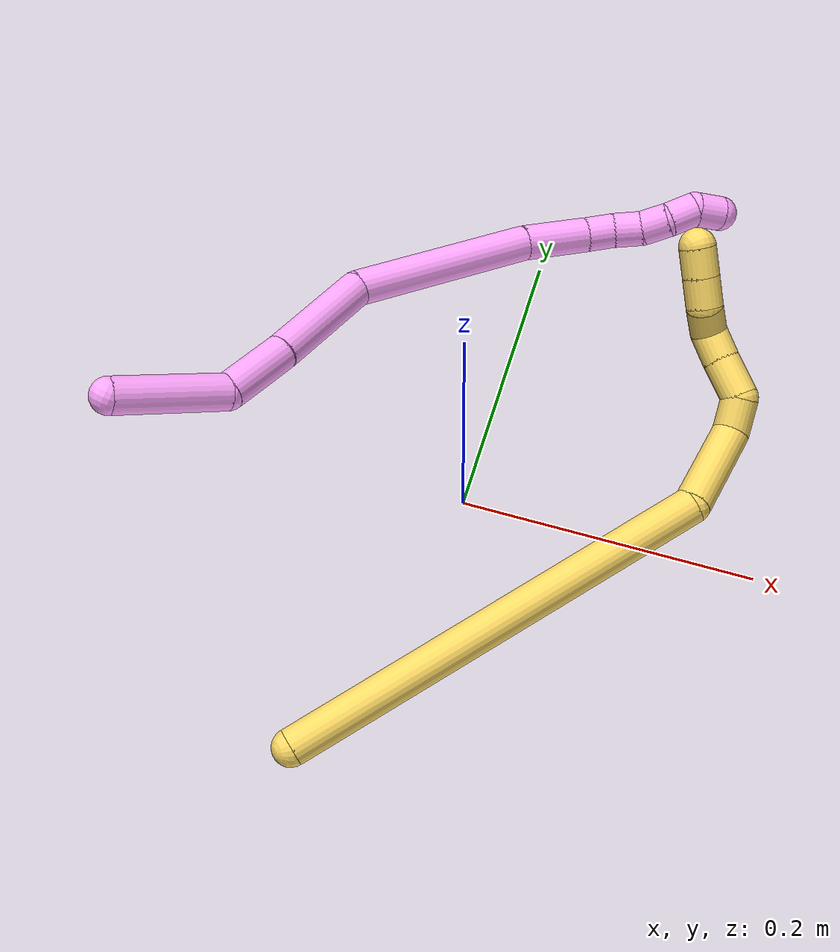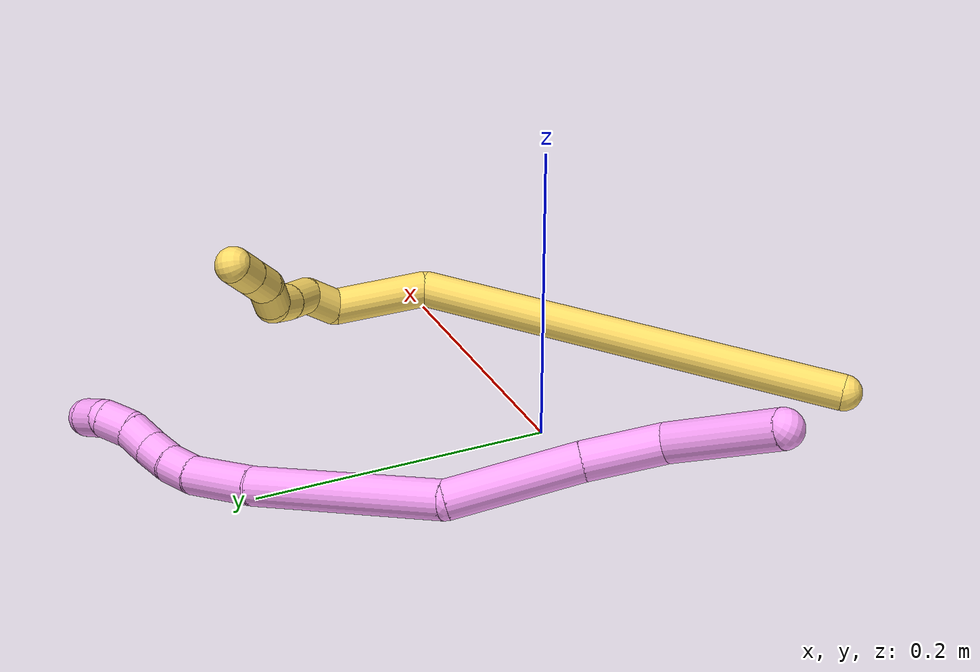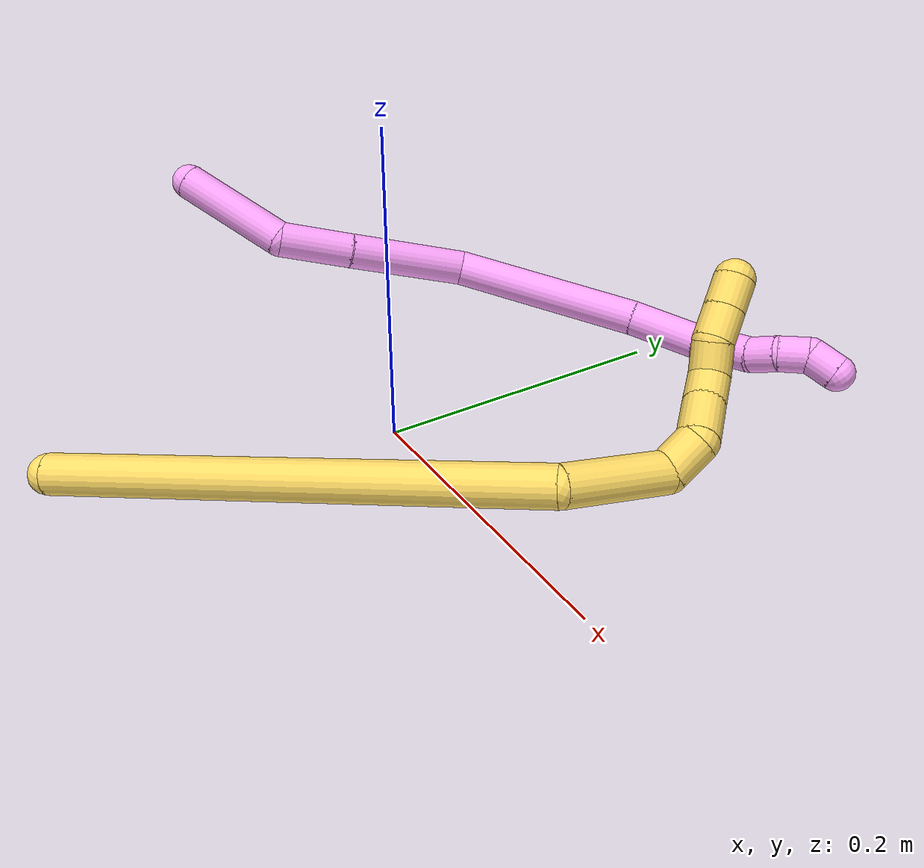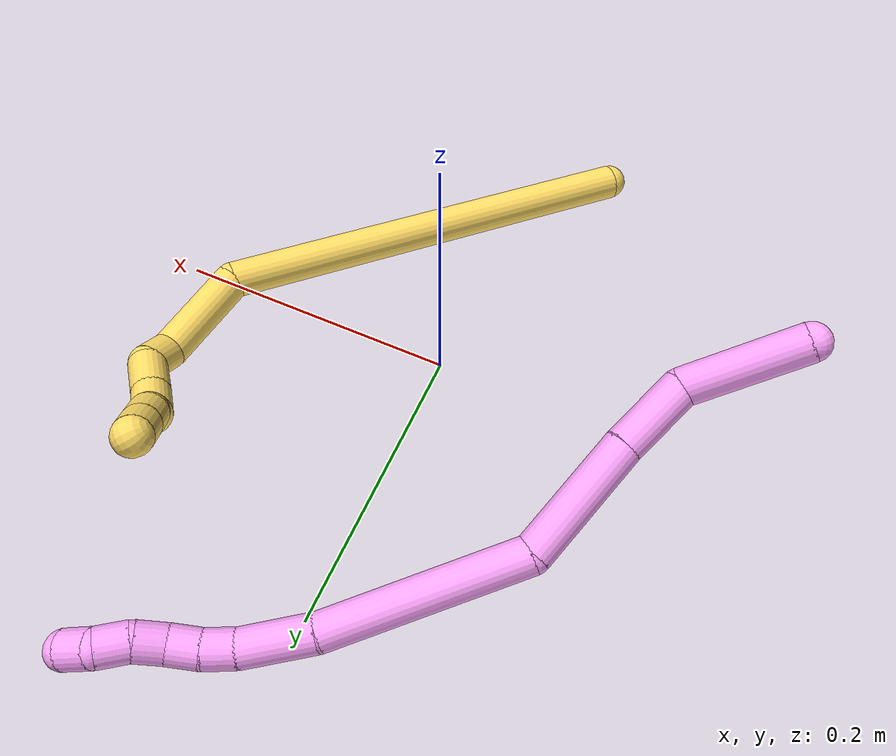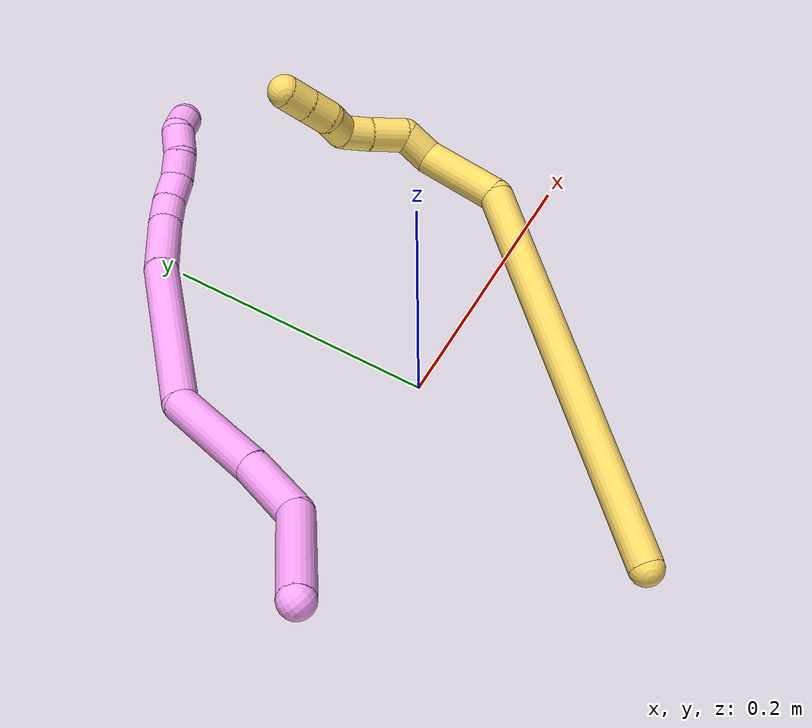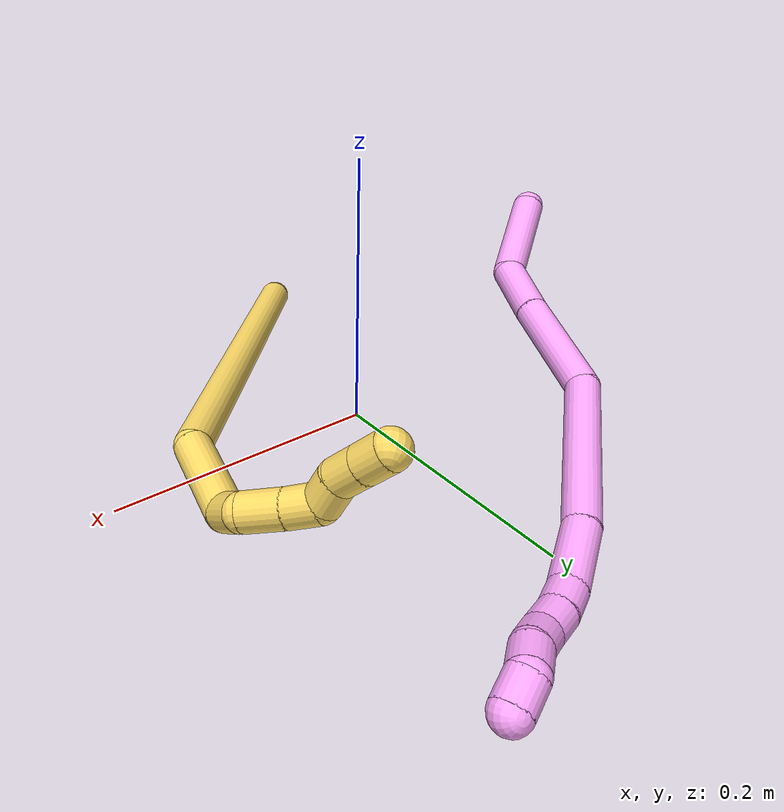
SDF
<sdf version="1.7">
 <world name="default">
  <model name="4">
   <static>0</static>
   <link name="4">
    <collision name="collision-cylinder-e_1_1_4">
     <pose>0.023434 0.029203 0.013548 -1.13641 0.629236 -0.409703</pose>
     <geometry><cylinder><radius>0.0125</radius><length>0.079637</length></cylinder></geometry>
     <surface>
      <friction><ode><mu>1.16</mu><mu2>1.16</mu2><slip1>0</slip1><slip2>0</slip2></ode></friction>
      <contact><ode><kp>1e+06</kp><kd>1</kd><max_vel>0</max_vel><min_depth>0.001</min_depth></ode></contact>
     </surface>
    </collision>
    <visual name="visual-cylinder-e_1_1_4">
     <pose>0.023434 0.029203 0.013548 -1.13641 0.629236 -0.409703</pose>
     <geometry><cylinder><radius>0.0125</radius><length>0.079637</length></cylinder></geometry>
     <material><ambient>1 0.65098 0.996078 1</ambient></material>
    </visual>
    <collision name="collision-cylinder-e_2_4_5">
     <pose>0.050347 0.077047 0.04411 -0.83102 0.136964 -0.060505</pose>
     <geometry><cylinder><radius>0.0125</radius><length>0.050954</length></cylinder></geometry>
     <surface>
      <friction><ode><mu>1.16</mu><mu2>1.16</mu2><slip1>0</slip1><slip2>0</slip2></ode></friction>
      <contact><ode><kp>1e+06</kp><kd>1</kd><max_vel>0</max_vel><min_depth>0.001</min_depth></ode></contact>
     </surface>
    </collision>
    <visual name="visual-cylinder-e_2_4_5">
     <pose>0.050347 0.077047 0.04411 -0.83102 0.136964 -0.060505</pose>
     <geometry><cylinder><radius>0.0125</radius><length>0.050954</length></cylinder></geometry>
     <material><ambient>1 0.65098 0.996078 1</ambient></material>
    </visual>
    <collision name="collision-cylinder-e_3_5_6">
     <pose>0.056451 0.127322 0.089035 -0.847833 0.06215 -0.028054</pose>
     <geometry><cylinder><radius>0.0125</radius><length>0.084535</length></cylinder></geometry>
     <surface>
      <friction><ode><mu>1.16</mu><mu2>1.16</mu2><slip1>0</slip1><slip2>0</slip2></ode></friction>
      <contact><ode><kp>1e+06</kp><kd>1</kd><max_vel>0</max_vel><min_depth>0.001</min_depth></ode></contact>
     </surface>
    </collision>
    <visual name="visual-cylinder-e_3_5_6">
     <pose>0.056451 0.127322 0.089035 -0.847833 0.06215 -0.028054</pose>
     <geometry><cylinder><radius>0.0125</radius><length>0.084535</length></cylinder></geometry>
     <material><ambient>1 0.65098 0.996078 1</ambient></material>
    </visual>
    <collision name="collision-cylinder-e_4_6_7">
     <pose>0.095006 0.199822 0.155246 -0.817802 0.570375 -0.25273</pose>
     <geometry><cylinder><radius>0.0125</radius><length>0.133085</length></cylinder></geometry>
     <surface>
      <friction><ode><mu>1.16</mu><mu2>1.16</mu2><slip1>0</slip1><slip2>0</slip2></ode></friction>
      <contact><ode><kp>1e+06</kp><kd>1</kd><max_vel>0</max_vel><min_depth>0.001</min_depth></ode></contact>
     </surface>
    </collision>
    <visual name="visual-cylinder-e_4_6_7">
     <pose>0.095006 0.199822 0.155246 -0.817802 0.570375 -0.25273</pose>
     <geometry><cylinder><radius>0.0125</radius><length>0.133085</length></cylinder></geometry>
     <material><ambient>1 0.65098 0.996078 1</ambient></material>
    </visual>
    <collision name="collision-cylinder-e_5_7_8">
     <pose>0.146979 0.254251 0.205555 -0.846114 0.724839 -0.338176</pose>
     <geometry><cylinder><radius>0.0125</radius><length>0.048396</length></cylinder></geometry>
     <surface>
      <friction><ode><mu>1.16</mu><mu2>1.16</mu2><slip1>0</slip1><slip2>0</slip2></ode></friction>
      <contact><ode><kp>1e+06</kp><kd>1</kd><max_vel>0</max_vel><min_depth>0.001</min_depth></ode></contact>
     </surface>
    </collision>
    <visual name="visual-cylinder-e_5_7_8">
     <pose>0.146979 0.254251 0.205555 -0.846114 0.724839 -0.338176</pose>
     <geometry><cylinder><radius>0.0125</radius><length>0.048396</length></cylinder></geometry>
     <material><ambient>1 0.65098 0.996078 1</ambient></material>
    </visual>
    <collision name="collision-cylinder-e_6_8_9">
     <pose>0.170966 0.271612 0.223217 -0.591518 0.86195 -0.278387</pose>
     <geometry><cylinder><radius>0.0125</radius><length>0.020928</length></cylinder></geometry>
     <surface>
      <friction><ode><mu>1.16</mu><mu2>1.16</mu2><slip1>0</slip1><slip2>0</slip2></ode></friction>
      <contact><ode><kp>1e+06</kp><kd>1</kd><max_vel>0</max_vel><min_depth>0.001</min_depth></ode></contact>
     </surface>
    </collision>
    <visual name="visual-cylinder-e_6_8_9">
     <pose>0.170966 0.271612 0.223217 -0.591518 0.86195 -0.278387</pose>
     <geometry><cylinder><radius>0.0125</radius><length>0.020928</length></cylinder></geometry>
     <material><ambient>1 0.65098 0.996078 1</ambient></material>
    </visual>
    <collision name="collision-cylinder-e_7_9_10">
     <pose>0.187748 0.277944 0.233819 -0.473237 1.00939 -0.264854</pose>
     <geometry><cylinder><radius>0.0125</radius><length>0.020882</length></cylinder></geometry>
     <surface>
      <friction><ode><mu>1.16</mu><mu2>1.16</mu2><slip1>0</slip1><slip2>0</slip2></ode></friction>
      <contact><ode><kp>1e+06</kp><kd>1</kd><max_vel>0</max_vel><min_depth>0.001</min_depth></ode></contact>
     </surface>
    </collision>
    <visual name="visual-cylinder-e_7_9_10">
     <pose>0.187748 0.277944 0.233819 -0.473237 1.00939 -0.264854</pose>
     <geometry><cylinder><radius>0.0125</radius><length>0.020882</length></cylinder></geometry>
     <material><ambient>1 0.65098 0.996078 1</ambient></material>
    </visual>
    <collision name="collision-cylinder-e_8_10_11">
     <pose>0.204115 0.281238 0.245501 -0.11246 0.837943 -0.050125</pose>
     <geometry><cylinder><radius>0.0125</radius><length>0.020259</length></cylinder></geometry>
     <surface>
      <friction><ode><mu>1.16</mu><mu2>1.16</mu2><slip1>0</slip1><slip2>0</slip2></ode></friction>
      <contact><ode><kp>1e+06</kp><kd>1</kd><max_vel>0</max_vel><min_depth>0.001</min_depth></ode></contact>
     </surface>
    </collision>
    <visual name="visual-cylinder-e_8_10_11">
     <pose>0.204115 0.281238 0.245501 -0.11246 0.837943 -0.050125</pose>
     <geometry><cylinder><radius>0.0125</radius><length>0.020259</length></cylinder></geometry>
     <material><ambient>1 0.65098 0.996078 1</ambient></material>
    </visual>
    <collision name="collision-cylinder-e_9_11_12">
     <pose>0.217997 0.285547 0.259634 -0.447208 0.658794 -0.155167</pose>
     <geometry><cylinder><radius>0.0125</radius><length>0.020755</length></cylinder></geometry>
     <surface>
      <friction><ode><mu>1.16</mu><mu2>1.16</mu2><slip1>0</slip1><slip2>0</slip2></ode></friction>
      <contact><ode><kp>1e+06</kp><kd>1</kd><max_vel>0</max_vel><min_depth>0.001</min_depth></ode></contact>
     </surface>
    </collision>
    <visual name="visual-cylinder-e_9_11_12">
     <pose>0.217997 0.285547 0.259634 -0.447208 0.658794 -0.155167</pose>
     <geometry><cylinder><radius>0.0125</radius><length>0.020755</length></cylinder></geometry>
     <material><ambient>1 0.65098 0.996078 1</ambient></material>
    </visual>
    <collision name="collision-cylinder-e_10_12_2">
     <pose>0.23203 0.295429 0.269611 -1.18426 0.843347 -0.586096</pose>
     <geometry><cylinder><radius>0.0125</radius><length>0.020567</length></cylinder></geometry>
     <surface>
      <friction><ode><mu>1.16</mu><mu2>1.16</mu2><slip1>0</slip1><slip2>0</slip2></ode></friction>
      <contact><ode><kp>1e+06</kp><kd>1</kd><max_vel>0</max_vel><min_depth>0.001</min_depth></ode></contact>
     </surface>
    </collision>
    <visual name="visual-cylinder-e_10_12_2">
     <pose>0.23203 0.295429 0.269611 -1.18426 0.843347 -0.586096</pose>
     <geometry><cylinder><radius>0.0125</radius><length>0.020567</length></cylinder></geometry>
     <material><ambient>1 0.65098 0.996078 1</ambient></material>
    </visual>
    <collision name="collision-sphere-2">
     <pose>0.239711 0.301763 0.272188 0 -0 0</pose>
     <geometry><sphere><radius>0.0125</radius></sphere></geometry>
     <surface>
      <friction><ode><mu>1.16</mu><mu2>1.16</mu2><slip1>0</slip1><slip2>0</slip2></ode></friction>
      <contact><ode><kp>1e+06</kp><kd>1</kd><max_vel>0</max_vel><min_depth>0.001</min_depth></ode></contact>
     </surface>
    </collision>
    <visual name="visual-sphere-2">
     <pose>0.239711 0.301763 0.272188 0 -0 0</pose>
     <geometry><sphere><radius>0.0125</radius></sphere></geometry>
     <material><ambient>1 0.65098 0.996078 1</ambient></material>
    </visual>
    <collision name="collision-sphere-12">
     <pose>0.22435 0.289096 0.267033 0 -0 0</pose>
     <geometry><sphere><radius>0.0125</radius></sphere></geometry>
     <surface>
      <friction><ode><mu>1.16</mu><mu2>1.16</mu2><slip1>0</slip1><slip2>0</slip2></ode></friction>
      <contact><ode><kp>1e+06</kp><kd>1</kd><max_vel>0</max_vel><min_depth>0.001</min_depth></ode></contact>
     </surface>
    </collision>
    <visual name="visual-sphere-12">
     <pose>0.22435 0.289096 0.267033 0 -0 0</pose>
     <geometry><sphere><radius>0.0125</radius></sphere></geometry>
     <material><ambient>1 0.65098 0.996078 1</ambient></material>
    </visual>
    <collision name="collision-sphere-11">
     <pose>0.211644 0.281998 0.252235 0 -0 0</pose>
     <geometry><sphere><radius>0.0125</radius></sphere></geometry>
     <surface>
      <friction><ode><mu>1.16</mu><mu2>1.16</mu2><slip1>0</slip1><slip2>0</slip2></ode></friction>
      <contact><ode><kp>1e+06</kp><kd>1</kd><max_vel>0</max_vel><min_depth>0.001</min_depth></ode></contact>
     </surface>
    </collision>
    <visual name="visual-sphere-11">
     <pose>0.211644 0.281998 0.252235 0 -0 0</pose>
     <geometry><sphere><radius>0.0125</radius></sphere></geometry>
     <material><ambient>1 0.65098 0.996078 1</ambient></material>
    </visual>
    <collision name="collision-sphere-10">
     <pose>0.196586 0.280477 0.238767 0 -0 0</pose>
     <geometry><sphere><radius>0.0125</radius></sphere></geometry>
     <surface>
      <friction><ode><mu>1.16</mu><mu2>1.16</mu2><slip1>0</slip1><slip2>0</slip2></ode></friction>
      <contact><ode><kp>1e+06</kp><kd>1</kd><max_vel>0</max_vel><min_depth>0.001</min_depth></ode></contact>
     </surface>
    </collision>
    <visual name="visual-sphere-10">
     <pose>0.196586 0.280477 0.238767 0 -0 0</pose>
     <geometry><sphere><radius>0.0125</radius></sphere></geometry>
     <material><ambient>1 0.65098 0.996078 1</ambient></material>
    </visual>
    <collision name="collision-sphere-9">
     <pose>0.17891 0.27541 0.228872 0 -0 0</pose>
     <geometry><sphere><radius>0.0125</radius></sphere></geometry>
     <surface>
      <friction><ode><mu>1.16</mu><mu2>1.16</mu2><slip1>0</slip1><slip2>0</slip2></ode></friction>
      <contact><ode><kp>1e+06</kp><kd>1</kd><max_vel>0</max_vel><min_depth>0.001</min_depth></ode></contact>
     </surface>
    </collision>
    <visual name="visual-sphere-9">
     <pose>0.17891 0.27541 0.228872 0 -0 0</pose>
     <geometry><sphere><radius>0.0125</radius></sphere></geometry>
     <material><ambient>1 0.65098 0.996078 1</ambient></material>
    </visual>
    <collision name="collision-sphere-4">
     <pose>0.046869 0.058405 0.027096 0 -0 0</pose>
     <geometry><sphere><radius>0.0125</radius></sphere></geometry>
     <surface>
      <friction><ode><mu>1.16</mu><mu2>1.16</mu2><slip1>0</slip1><slip2>0</slip2></ode></friction>
      <contact><ode><kp>1e+06</kp><kd>1</kd><max_vel>0</max_vel><min_depth>0.001</min_depth></ode></contact>
     </surface>
    </collision>
    <visual name="visual-sphere-4">
     <pose>0.046869 0.058405 0.027096 0 -0 0</pose>
     <geometry><sphere><radius>0.0125</radius></sphere></geometry>
     <material><ambient>1 0.65098 0.996078 1</ambient></material>
    </visual>
    <collision name="collision-sphere-1">
     <geometry><sphere><radius>0.0125</radius></sphere></geometry>
     <surface>
      <friction><ode><mu>1.16</mu><mu2>1.16</mu2><slip1>0</slip1><slip2>0</slip2></ode></friction>
      <contact><ode><kp>1e+06</kp><kd>1</kd><max_vel>0</max_vel><min_depth>0.001</min_depth></ode></contact>
     </surface>
    </collision>
    <visual name="visual-sphere-1">
     <geometry><sphere><radius>0.0125</radius></sphere></geometry>
     <material><ambient>1 0.65098 0.996078 1</ambient></material>
    </visual>
    <collision name="collision-sphere-8">
     <pose>0.163022 0.267814 0.217563 0 -0 0</pose>
     <geometry><sphere><radius>0.0125</radius></sphere></geometry>
     <surface>
      <friction><ode><mu>1.16</mu><mu2>1.16</mu2><slip1>0</slip1><slip2>0</slip2></ode></friction>
      <contact><ode><kp>1e+06</kp><kd>1</kd><max_vel>0</max_vel><min_depth>0.001</min_depth></ode></contact>
     </surface>
    </collision>
    <visual name="visual-sphere-8">
     <pose>0.163022 0.267814 0.217563 0 -0 0</pose>
     <geometry><sphere><radius>0.0125</radius></sphere></geometry>
     <material><ambient>1 0.65098 0.996078 1</ambient></material>
    </visual>
    <collision name="collision-sphere-5">
     <pose>0.053826 0.095689 0.061124 0 -0 0</pose>
     <geometry><sphere><radius>0.0125</radius></sphere></geometry>
     <surface>
      <friction><ode><mu>1.16</mu><mu2>1.16</mu2><slip1>0</slip1><slip2>0</slip2></ode></friction>
      <contact><ode><kp>1e+06</kp><kd>1</kd><max_vel>0</max_vel><min_depth>0.001</min_depth></ode></contact>
     </surface>
    </collision>
    <visual name="visual-sphere-5">
     <pose>0.053826 0.095689 0.061124 0 -0 0</pose>
     <geometry><sphere><radius>0.0125</radius></sphere></geometry>
     <material><ambient>1 0.65098 0.996078 1</ambient></material>
    </visual>
    <collision name="collision-sphere-6">
     <pose>0.059076 0.158955 0.116946 0 -0 0</pose>
     <geometry><sphere><radius>0.0125</radius></sphere></geometry>
     <surface>
      <friction><ode><mu>1.16</mu><mu2>1.16</mu2><slip1>0</slip1><slip2>0</slip2></ode></friction>
      <contact><ode><kp>1e+06</kp><kd>1</kd><max_vel>0</max_vel><min_depth>0.001</min_depth></ode></contact>
     </surface>
    </collision>
    <visual name="visual-sphere-6">
     <pose>0.059076 0.158955 0.116946 0 -0 0</pose>
     <geometry><sphere><radius>0.0125</radius></sphere></geometry>
     <material><ambient>1 0.65098 0.996078 1</ambient></material>
    </visual>
    <collision name="collision-sphere-7">
     <pose>0.130935 0.240688 0.193547 0 -0 0</pose>
     <geometry><sphere><radius>0.0125</radius></sphere></geometry>
     <surface>
      <friction><ode><mu>1.16</mu><mu2>1.16</mu2><slip1>0</slip1><slip2>0</slip2></ode></friction>
      <contact><ode><kp>1e+06</kp><kd>1</kd><max_vel>0</max_vel><min_depth>0.001</min_depth></ode></contact>
     </surface>
    </collision>
    <visual name="visual-sphere-7">
     <pose>0.130935 0.240688 0.193547 0 -0 0</pose>
     <geometry><sphere><radius>0.0125</radius></sphere></geometry>
     <material><ambient>1 0.65098 0.996078 1</ambient></material>
    </visual>
    <inertial>
     <pose>0.099783 0.170203 0.133848 0 -0 0</pose>
     <mass>0.5</mass>
     <inertia>
      <ixx>0.000232</ixx>
      <ixy>0</ixy>
      <ixz>0</ixz>
      <iyy>0.000201</iyy>
      <iyz>0</iyz>
      <izz>-0.000348</izz>
     </inertia>
    </inertial>
   </link>
   <pose>-0.218864 -0.04468 0.109167 -0.990172 -0.041821 -0.252171</pose>
  </model>
  <model name="5">
   <static>0</static>
   <link name="5">
    <collision name="collision-cylinder-e_1_1_4">
     <pose>0.053871 0.045999 -0.132316 -2.80702 0.367129 -1.66543</pose>
     <geometry><cylinder><radius>0.0125</radius><length>0.30017</length></cylinder></geometry>
     <surface>
      <friction><ode><mu>1.16</mu><mu2>1.16</mu2><slip1>0</slip1><slip2>0</slip2></ode></friction>
      <contact><ode><kp>1e+06</kp><kd>1</kd><max_vel>0</max_vel><min_depth>0.001</min_depth></ode></contact>
     </surface>
    </collision>
    <visual name="visual-cylinder-e_1_1_4">
     <pose>0.053871 0.045999 -0.132316 -2.80702 0.367129 -1.66543</pose>
     <geometry><cylinder><radius>0.0125</radius><length>0.30017</length></cylinder></geometry>
     <material><ambient>1 0.858824 0.4 1</ambient></material>
    </visual>
    <collision name="collision-cylinder-e_2_4_5">
     <pose>0.103344 0.111214 -0.290762 -2.5075 -0.13479 0.405765</pose>
     <geometry><cylinder><radius>0.0125</radius><length>0.065464</length></cylinder></geometry>
     <surface>
      <friction><ode><mu>1.16</mu><mu2>1.16</mu2><slip1>0</slip1><slip2>0</slip2></ode></friction>
      <contact><ode><kp>1e+06</kp><kd>1</kd><max_vel>0</max_vel><min_depth>0.001</min_depth></ode></contact>
     </surface>
    </collision>
    <visual name="visual-cylinder-e_2_4_5">
     <pose>0.103344 0.111214 -0.290762 -2.5075 -0.13479 0.405765</pose>
     <geometry><cylinder><radius>0.0125</radius><length>0.065464</length></cylinder></geometry>
     <material><ambient>1 0.858824 0.4 1</ambient></material>
    </visual>
    <collision name="collision-cylinder-e_3_5_6">
     <pose>0.102317 0.141349 -0.320996 -1.93031 0.281432 -0.403564</pose>
     <geometry><cylinder><radius>0.0125</radius><length>0.024285</length></cylinder></geometry>
     <surface>
      <friction><ode><mu>1.16</mu><mu2>1.16</mu2><slip1>0</slip1><slip2>0</slip2></ode></friction>
      <contact><ode><kp>1e+06</kp><kd>1</kd><max_vel>0</max_vel><min_depth>0.001</min_depth></ode></contact>
     </surface>
    </collision>
    <visual name="visual-cylinder-e_3_5_6">
     <pose>0.102317 0.141349 -0.320996 -1.93031 0.281432 -0.403564</pose>
     <geometry><cylinder><radius>0.0125</radius><length>0.024285</length></cylinder></geometry>
     <material><ambient>1 0.858824 0.4 1</ambient></material>
    </visual>
    <collision name="collision-cylinder-e_4_6_7">
     <pose>0.101343 0.165468 -0.324201 -1.50282 -0.317406 0.296848</pose>
     <geometry><cylinder><radius>0.0125</radius><length>0.027853</length></cylinder></geometry>
     <surface>
      <friction><ode><mu>1.16</mu><mu2>1.16</mu2><slip1>0</slip1><slip2>0</slip2></ode></friction>
      <contact><ode><kp>1e+06</kp><kd>1</kd><max_vel>0</max_vel><min_depth>0.001</min_depth></ode></contact>
     </surface>
    </collision>
    <visual name="visual-cylinder-e_4_6_7">
     <pose>0.101343 0.165468 -0.324201 -1.50282 -0.317406 0.296848</pose>
     <geometry><cylinder><radius>0.0125</radius><length>0.027853</length></cylinder></geometry>
     <material><ambient>1 0.858824 0.4 1</ambient></material>
    </visual>
    <collision name="collision-cylinder-e_5_7_8">
     <pose>0.09449 0.189044 -0.32247 -1.49073 -0.236358 0.218303</pose>
     <geometry><cylinder><radius>0.0125</radius><length>0.021412</length></cylinder></geometry>
     <surface>
      <friction><ode><mu>1.16</mu><mu2>1.16</mu2><slip1>0</slip1><slip2>0</slip2></ode></friction>
      <contact><ode><kp>1e+06</kp><kd>1</kd><max_vel>0</max_vel><min_depth>0.001</min_depth></ode></contact>
     </surface>
    </collision>
    <visual name="visual-cylinder-e_5_7_8">
     <pose>0.09449 0.189044 -0.32247 -1.49073 -0.236358 0.218303</pose>
     <geometry><cylinder><radius>0.0125</radius><length>0.021412</length></cylinder></geometry>
     <material><ambient>1 0.858824 0.4 1</ambient></material>
    </visual>
    <collision name="collision-cylinder-e_6_8_9">
     <pose>0.096422 0.207834 -0.318098 -1.17271 0.452563 -0.303518</pose>
     <geometry><cylinder><radius>0.0125</radius><length>0.020304</length></cylinder></geometry>
     <surface>
      <friction><ode><mu>1.16</mu><mu2>1.16</mu2><slip1>0</slip1><slip2>0</slip2></ode></friction>
      <contact><ode><kp>1e+06</kp><kd>1</kd><max_vel>0</max_vel><min_depth>0.001</min_depth></ode></contact>
     </surface>
    </collision>
    <visual name="visual-cylinder-e_6_8_9">
     <pose>0.096422 0.207834 -0.318098 -1.17271 0.452563 -0.303518</pose>
     <geometry><cylinder><radius>0.0125</radius><length>0.020304</length></cylinder></geometry>
     <material><ambient>1 0.858824 0.4 1</ambient></material>
    </visual>
    <collision name="collision-cylinder-e_7_9_10">
     <pose>0.102894 0.226261 -0.313778 -1.49296 0.199786 -0.184898</pose>
     <geometry><cylinder><radius>0.0125</radius><length>0.020489</length></cylinder></geometry>
     <surface>
      <friction><ode><mu>1.16</mu><mu2>1.16</mu2><slip1>0</slip1><slip2>0</slip2></ode></friction>
      <contact><ode><kp>1e+06</kp><kd>1</kd><max_vel>0</max_vel><min_depth>0.001</min_depth></ode></contact>
     </surface>
    </collision>
    <visual name="visual-cylinder-e_7_9_10">
     <pose>0.102894 0.226261 -0.313778 -1.49296 0.199786 -0.184898</pose>
     <geometry><cylinder><radius>0.0125</radius><length>0.020489</length></cylinder></geometry>
     <material><ambient>1 0.858824 0.4 1</ambient></material>
    </visual>
    <collision name="collision-cylinder-e_8_10_2">
     <pose>0.106918 0.246053 -0.312234 -1.49291 0.200108 -0.185189</pose>
     <geometry><cylinder><radius>0.0125</radius><length>0.020024</length></cylinder></geometry>
     <surface>
      <friction><ode><mu>1.16</mu><mu2>1.16</mu2><slip1>0</slip1><slip2>0</slip2></ode></friction>
      <contact><ode><kp>1e+06</kp><kd>1</kd><max_vel>0</max_vel><min_depth>0.001</min_depth></ode></contact>
     </surface>
    </collision>
    <visual name="visual-cylinder-e_8_10_2">
     <pose>0.106918 0.246053 -0.312234 -1.49291 0.200108 -0.185189</pose>
     <geometry><cylinder><radius>0.0125</radius><length>0.020024</length></cylinder></geometry>
     <material><ambient>1 0.858824 0.4 1</ambient></material>
    </visual>
    <collision name="collision-sphere-2">
     <pose>0.108908 0.255836 -0.31147 0 -0 0</pose>
     <geometry><sphere><radius>0.0125</radius></sphere></geometry>
     <surface>
      <friction><ode><mu>1.16</mu><mu2>1.16</mu2><slip1>0</slip1><slip2>0</slip2></ode></friction>
      <contact><ode><kp>1e+06</kp><kd>1</kd><max_vel>0</max_vel><min_depth>0.001</min_depth></ode></contact>
     </surface>
    </collision>
    <visual name="visual-sphere-2">
     <pose>0.108908 0.255836 -0.31147 0 -0 0</pose>
     <geometry><sphere><radius>0.0125</radius></sphere></geometry>
     <material><ambient>1 0.858824 0.4 1</ambient></material>
    </visual>
    <collision name="collision-sphere-10">
     <pose>0.104927 0.236271 -0.312997 0 -0 0</pose>
     <geometry><sphere><radius>0.0125</radius></sphere></geometry>
     <surface>
      <friction><ode><mu>1.16</mu><mu2>1.16</mu2><slip1>0</slip1><slip2>0</slip2></ode></friction>
      <contact><ode><kp>1e+06</kp><kd>1</kd><max_vel>0</max_vel><min_depth>0.001</min_depth></ode></contact>
     </surface>
    </collision>
    <visual name="visual-sphere-10">
     <pose>0.104927 0.236271 -0.312997 0 -0 0</pose>
     <geometry><sphere><radius>0.0125</radius></sphere></geometry>
     <material><ambient>1 0.858824 0.4 1</ambient></material>
    </visual>
    <collision name="collision-sphere-9">
     <pose>0.100861 0.21625 -0.314559 0 -0 0</pose>
     <geometry><sphere><radius>0.0125</radius></sphere></geometry>
     <surface>
      <friction><ode><mu>1.16</mu><mu2>1.16</mu2><slip1>0</slip1><slip2>0</slip2></ode></friction>
      <contact><ode><kp>1e+06</kp><kd>1</kd><max_vel>0</max_vel><min_depth>0.001</min_depth></ode></contact>
     </surface>
    </collision>
    <visual name="visual-sphere-9">
     <pose>0.100861 0.21625 -0.314559 0 -0 0</pose>
     <geometry><sphere><radius>0.0125</radius></sphere></geometry>
     <material><ambient>1 0.858824 0.4 1</ambient></material>
    </visual>
    <collision name="collision-sphere-4">
     <pose>0.107742 0.091998 -0.264632 0 -0 0</pose>
     <geometry><sphere><radius>0.0125</radius></sphere></geometry>
     <surface>
      <friction><ode><mu>1.16</mu><mu2>1.16</mu2><slip1>0</slip1><slip2>0</slip2></ode></friction>
      <contact><ode><kp>1e+06</kp><kd>1</kd><max_vel>0</max_vel><min_depth>0.001</min_depth></ode></contact>
     </surface>
    </collision>
    <visual name="visual-sphere-4">
     <pose>0.107742 0.091998 -0.264632 0 -0 0</pose>
     <geometry><sphere><radius>0.0125</radius></sphere></geometry>
     <material><ambient>1 0.858824 0.4 1</ambient></material>
    </visual>
    <collision name="collision-sphere-1">
     <geometry><sphere><radius>0.0125</radius></sphere></geometry>
     <surface>
      <friction><ode><mu>1.16</mu><mu2>1.16</mu2><slip1>0</slip1><slip2>0</slip2></ode></friction>
      <contact><ode><kp>1e+06</kp><kd>1</kd><max_vel>0</max_vel><min_depth>0.001</min_depth></ode></contact>
     </surface>
    </collision>
    <visual name="visual-sphere-1">
     <geometry><sphere><radius>0.0125</radius></sphere></geometry>
     <material><ambient>1 0.858824 0.4 1</ambient></material>
    </visual>
    <collision name="collision-sphere-8">
     <pose>0.091983 0.199418 -0.321637 0 -0 0</pose>
     <geometry><sphere><radius>0.0125</radius></sphere></geometry>
     <surface>
      <friction><ode><mu>1.16</mu><mu2>1.16</mu2><slip1>0</slip1><slip2>0</slip2></ode></friction>
      <contact><ode><kp>1e+06</kp><kd>1</kd><max_vel>0</max_vel><min_depth>0.001</min_depth></ode></contact>
     </surface>
    </collision>
    <visual name="visual-sphere-8">
     <pose>0.091983 0.199418 -0.321637 0 -0 0</pose>
     <geometry><sphere><radius>0.0125</radius></sphere></geometry>
     <material><ambient>1 0.858824 0.4 1</ambient></material>
    </visual>
    <collision name="collision-sphere-5">
     <pose>0.098945 0.13043 -0.316892 0 -0 0</pose>
     <geometry><sphere><radius>0.0125</radius></sphere></geometry>
     <surface>
      <friction><ode><mu>1.16</mu><mu2>1.16</mu2><slip1>0</slip1><slip2>0</slip2></ode></friction>
      <contact><ode><kp>1e+06</kp><kd>1</kd><max_vel>0</max_vel><min_depth>0.001</min_depth></ode></contact>
     </surface>
    </collision>
    <visual name="visual-sphere-5">
     <pose>0.098945 0.13043 -0.316892 0 -0 0</pose>
     <geometry><sphere><radius>0.0125</radius></sphere></geometry>
     <material><ambient>1 0.858824 0.4 1</ambient></material>
    </visual>
    <collision name="collision-sphere-6">
     <pose>0.10569 0.152268 -0.3251 0 -0 0</pose>
     <geometry><sphere><radius>0.0125</radius></sphere></geometry>
     <surface>
      <friction><ode><mu>1.16</mu><mu2>1.16</mu2><slip1>0</slip1><slip2>0</slip2></ode></friction>
      <contact><ode><kp>1e+06</kp><kd>1</kd><max_vel>0</max_vel><min_depth>0.001</min_depth></ode></contact>
     </surface>
    </collision>
    <visual name="visual-sphere-6">
     <pose>0.10569 0.152268 -0.3251 0 -0 0</pose>
     <geometry><sphere><radius>0.0125</radius></sphere></geometry>
     <material><ambient>1 0.858824 0.4 1</ambient></material>
    </visual>
    <collision name="collision-sphere-7">
     <pose>0.096997 0.178669 -0.323302 0 -0 0</pose>
     <geometry><sphere><radius>0.0125</radius></sphere></geometry>
     <surface>
      <friction><ode><mu>1.16</mu><mu2>1.16</mu2><slip1>0</slip1><slip2>0</slip2></ode></friction>
      <contact><ode><kp>1e+06</kp><kd>1</kd><max_vel>0</max_vel><min_depth>0.001</min_depth></ode></contact>
     </surface>
    </collision>
    <visual name="visual-sphere-7">
     <pose>0.096997 0.178669 -0.323302 0 -0 0</pose>
     <geometry><sphere><radius>0.0125</radius></sphere></geometry>
     <material><ambient>1 0.858824 0.4 1</ambient></material>
    </visual>
    <inertial>
     <pose>0.072946 0.09392 -0.203243 0 -0 0</pose>
     <mass>0.5</mass>
     <inertia>
      <ixx>-0.002253</ixx>
      <ixy>0</ixy>
      <ixz>0</ixz>
      <iyy>-0.001625</iyy>
      <iyz>0</iyz>
      <izz>-0.001555</izz>
     </inertia>
    </inertial>
   </link>
   <pose>-0.053057 -0.200313 0.011495 0.934674 -0.888578 -0.282171</pose>
  </model>
 </world>
</sdf>
